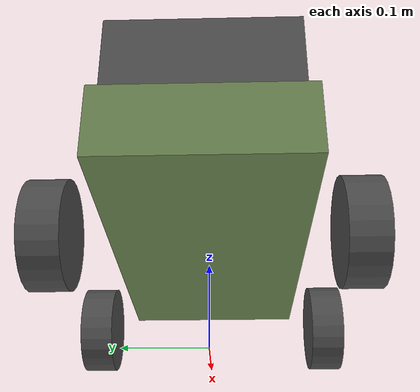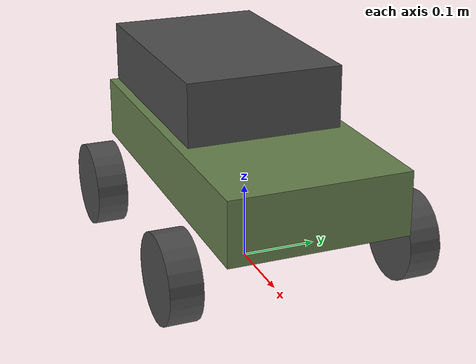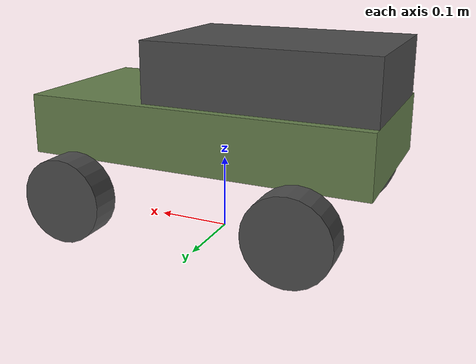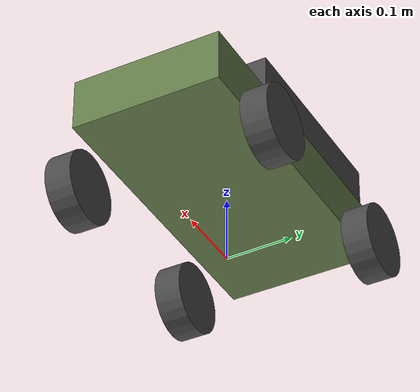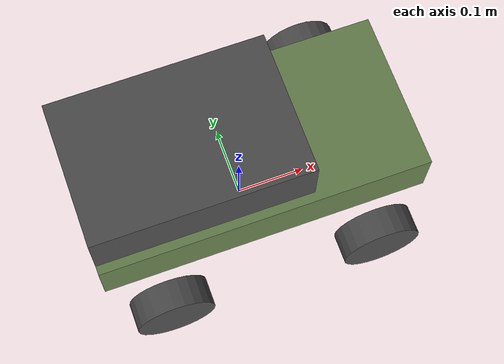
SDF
<?xml version="1.0" ?>
<sdf version="1.5">
  <model name='axial_scx10'>
    <pose>0 0 0.15 0 0 0</pose>

    <link name='chassis'>

      <inertial>
        <mass>2</mass>
        <inertia>
          <ixx>0.01</ixx>
          <iyy>0.01</iyy>
          <izz>0.01</izz>
        </inertia>
      </inertial>

      <collision name='collision'>
        <geometry>
          <box>
            <size>0.46 0.225 0.08</size>
          </box>
        </geometry>
      </collision>

      <visual name='visual'>
        <geometry>
          <box>
            <size>0.46 0.225 0.08</size>
          </box>
        </geometry>

        <material>
          <ambient>0.3 0.4 0.2 </ambient>
          <diffuse>0.4 0.5 0.3 </diffuse>
        </material>
      </visual>

      <visual name='cage'>
        <pose>-0.08 0 0.08 0 0 0</pose>
        <geometry>
          <box>
            <size>0.3 0.2 0.08</size>
          </box>
        </geometry>

        <material>
          <script>
            <uri>file://media/materials/scripts/gazebo.material</uri>
            <name>Gazebo/DarkGrey</name>
          </script>
        </material>

      </visual>

      <collision name='collision'>
        <pose>-0.08 0 0.08 0 0 0</pose>
        <geometry>
          <box>
            <size>0.3 0.2 0.08</size>
          </box>
        </geometry>
      </collision>

    </link>

    <link name="left_front_wheel">
      <pose>0.15 0.15 -0.08 1.5707 0 0</pose>
      <inertial>
        <mass>0.01</mass>
        <inertia>
          <ixx>0.01</ixx>
          <iyy>0.01</iyy>
          <izz>0.01</izz>
        </inertia>
      </inertial>

      <collision name="collision">
        <geometry>
          <cylinder>
            <radius>0.055</radius>
            <length>0.04</length>
          </cylinder>
        </geometry>
      </collision>

      <visual name="visual">
        <geometry>
          <cylinder>
            <radius>0.055</radius>
            <length>0.04</length>
          </cylinder>
        </geometry>

        <material>
          <script>
            <uri>file://media/materials/scripts/gazebo.material</uri>
            <name>Gazebo/DarkGrey</name>
          </script>
        </material>

      </visual>

    </link>

    <link name="right_front_wheel">
      <pose>0.15 -0.15 -0.08 1.5707 0 0</pose>
      <inertial>
        <mass>0.01</mass>
        <inertia>
          <ixx>0.001</ixx>
          <iyy>0.001</iyy>
          <izz>0.001</izz>
        </inertia>
      </inertial>

      <collision name="collision">
        <geometry>
          <cylinder>
            <radius>0.055</radius>
            <length>0.04</length>
          </cylinder>
        </geometry>
      </collision>

      <visual name="visual">
        <geometry>
          <cylinder>
            <radius>0.055</radius>
            <length>0.04</length>
          </cylinder>
        </geometry>

        <material>
          <script>
            <uri>file://media/materials/scripts/gazebo.material</uri>
            <name>Gazebo/DarkGrey</name>
          </script>
        </material>

      </visual>
    </link>

    <link name="left_rear_wheel">
      <pose>-0.15 0.15 -0.08 1.5707 0 0</pose>
      <inertial>
        <mass>0.01</mass>
        <inertia>
          <ixx>0.01</ixx>
          <iyy>0.01</iyy>
          <izz>0.01</izz>
        </inertia>
      </inertial>
      <collision name="collision">
        <geometry>
          <cylinder>
            <radius>0.055</radius>
            <length>0.04</length>
          </cylinder>
        </geometry>
      </collision>

      <visual name="visual">
        <geometry>
          <cylinder>
            <radius>0.055</radius>
            <length>0.04</length>
          </cylinder>
        </geometry>

        <material>
          <script>
            <uri>file://media/materials/scripts/gazebo.material</uri>
            <name>Gazebo/DarkGrey</name>
          </script>
        </material>

      </visual>

    </link>

    <link name="right_rear_wheel">
      <pose>-0.15 -0.15 -0.08 1.5707 0 0</pose>
      <inertial>
        <mass>0.01</mass>
        <inertia>
          <ixx>0.01</ixx>
          <iyy>0.01</iyy>
          <izz>0.01</izz>
        </inertia>
      </inertial>

      <collision name="collision">
        <geometry>
          <cylinder>
            <radius>0.055</radius>
            <length>0.04</length>
          </cylinder>
        </geometry>
      </collision>

      <visual name="visual">
        <geometry>
          <cylinder>
            <radius>0.055</radius>
            <length>0.04</length>
          </cylinder>
        </geometry>

        <material>
          <script>
            <uri>file://media/materials/scripts/gazebo.material</uri>
            <name>Gazebo/DarkGrey</name>
          </script>
        </material>

      </visual>

    </link>

    <link name="right_front_steer">
      <pose>0.15 -0.15 -0.08 0 0 0</pose>
      <inertial>
        <mass>0.01</mass>
        <inertia>
          <ixx>0.01</ixx>
          <iyy>0.01</iyy>
          <izz>0.01</izz>
        </inertia>
      </inertial>
    </link>

    <link name="left_front_steer">
      <pose>0.15 0.15 -0.08 0 0 0</pose>
      <inertial>
        <mass>0.01</mass>
        <inertia>
          <ixx>0.01</ixx>
          <iyy>0.01</iyy>
          <izz>0.01</izz>
        </inertia>
      </inertial>
    </link>

    <joint type="revolute" name="left_front_steer_hinge">
      <child>left_front_steer</child>
      <parent>chassis</parent>
      <axis>
        <xyz>0 0 1</xyz>
        <limit>
          <lower>-0.3</lower>
          <upper>0.3</upper>
        </limit>
        <dynamics>
          <friction>0.03</friction>
          <damping>0.01</damping>
        </dynamics>
      </axis>
    </joint>

    <joint type="revolute" name="right_front_steer_hinge">
      <child>right_front_steer</child>
      <parent>chassis</parent>
      <axis>
        <xyz>0 0 1</xyz>
        <limit>
          <lower>-0.3</lower>
          <upper>0.3</upper>
        </limit>
        <dynamics>
          <friction>0.03</friction>
          <damping>0.01</damping>
        </dynamics>
      </axis>
    </joint>

    <joint type="revolute" name="left_front_wheel_hinge">
      <child>left_front_wheel</child>
      <parent>left_front_steer</parent>
      <axis>
        <xyz>0 0 1</xyz>
        <dynamics>
          <friction>0.01</friction>
          <damping>0.01</damping>
        </dynamics>
      </axis>
    </joint>

    <joint type="revolute" name="right_front_wheel_hinge">
      <child>right_front_wheel</child>
      <parent>right_front_steer</parent>
      <axis>
        <xyz>0 0 1</xyz>
        <dynamics>
          <friction>0.01</friction>
          <damping>0.01</damping>
        </dynamics>
      </axis>
    </joint>

    <joint type="revolute" name="left_rear_wheel_hinge">
      <pose>0 0 0 0 0 0</pose>
      <child>left_rear_wheel</child>
      <parent>chassis</parent>
      <axis>
        <xyz>0 0 1</xyz>
        <dynamics>
          <friction>0.01</friction>
          <damping>0.01</damping>
        </dynamics>
      </axis>
    </joint>

    <joint type="revolute" name="right_rear_wheel_hinge">
      <pose>0 0 0 0 0 0</pose>
      <child>right_rear_wheel</child>
      <parent>chassis</parent>
      <axis>
        <xyz>0 0 1</xyz>
        <dynamics>
          <friction>0.01</friction>
          <damping>0.01</damping>
        </dynamics>
      </axis>
    </joint>

  </model>
</sdf>

<!-- vim: set et fenc=utf-8 ff=unix sts=0 sw=2 ts=2 : -->
